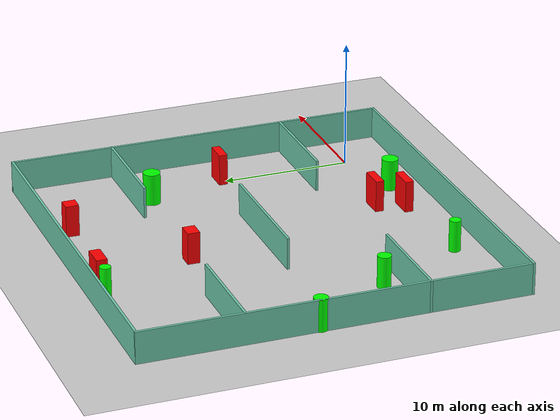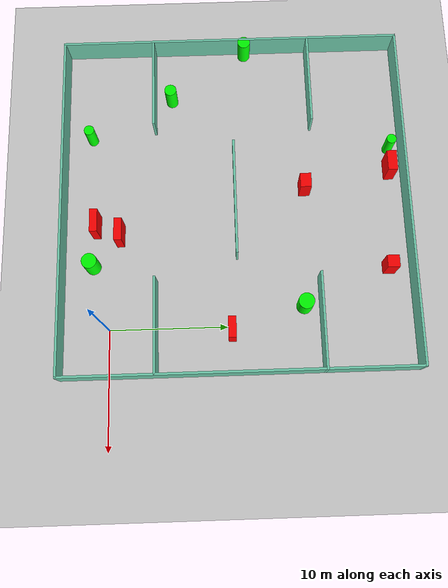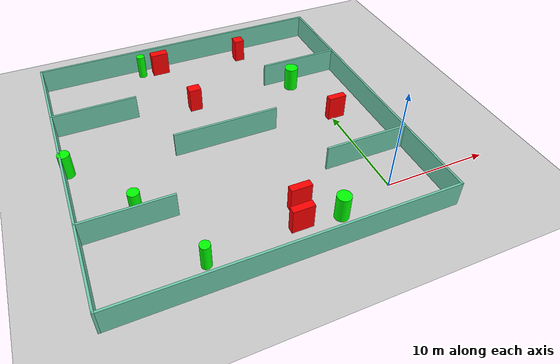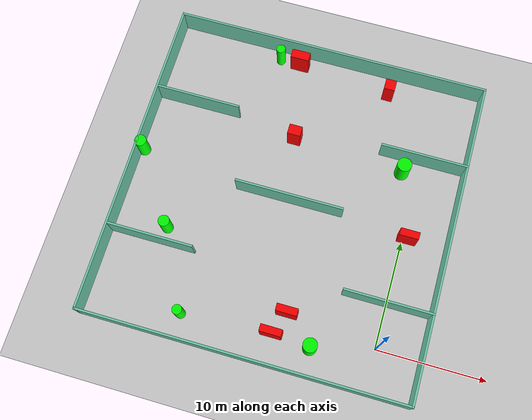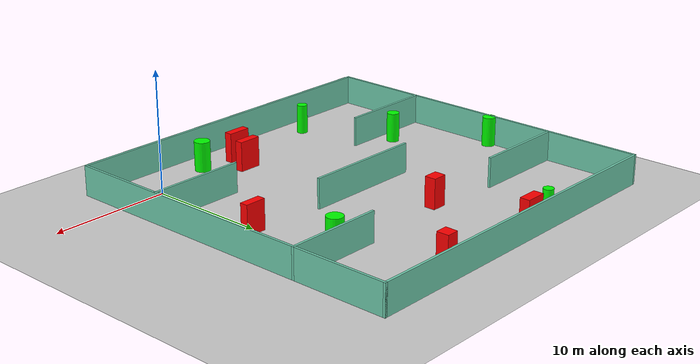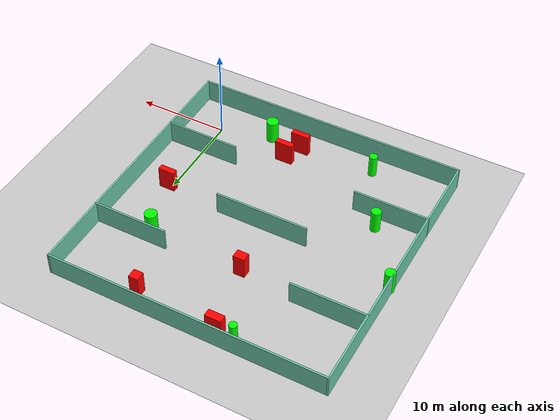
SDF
<sdf version="1.7">
 <world name="default">
  <light name="sun" type="directional">
   <pose>0 0 10 0 -0 0</pose>
   <diffuse>0.8 0.8 0.8 1</diffuse>
   <specular>0.2 0.2 0.2 1</specular>
   <attenuation>
    <range>1000</range>
    <constant>0.9</constant>
    <linear>0.01</linear>
    <quadratic>0.001</quadratic>
   </attenuation>
   <direction>-0.5 0.1 -0.9</direction>
   <spot><inner_angle>0</inner_angle><outer_angle>0</outer_angle><falloff>0</falloff></spot>
  </light>
  <model name="ground_plane">
   <static>1</static>
   <link name="link">
    <collision name="collision">
     <geometry><plane><normal>0 0 1</normal><size>100 100</size></plane></geometry>
     <surface>
      <contact><collide_bitmask>65535</collide_bitmask></contact>
      <friction><ode><mu>100</mu><mu2>50</mu2></ode></friction>
     </surface>
    </collision>
    <visual name="visual">
     <cast_shadows>0</cast_shadows>
     <geometry><plane><normal>0 0 1</normal><size>100 100</size></plane></geometry>
     <material>
      <script><uri>file://media/materials/scripts/gazebo.material</uri><name>Gazebo/Grey</name></script>
     </material>
    </visual>
   </link>
  </model>
  <gravity>0 0 -9.8</gravity>
  <magnetic_field>6e-06 2.3e-05 -4.2e-05</magnetic_field>
  <atmosphere type="adiabatic"/>
  <physics type="ode">
   <max_step_size>0.001</max_step_size>
   <real_time_factor>1</real_time_factor>
   <real_time_update_rate>1000</real_time_update_rate>
  </physics>
  <scene><ambient>0.4 0.4 0.4 1</ambient><background>0.7 0.7 0.7 1</background><shadows>1</shadows></scene>
  <spherical_coordinates>
   <surface_model>EARTH_WGS84</surface_model>
   <latitude_deg>0</latitude_deg>
   <longitude_deg>0</longitude_deg>
   <elevation>0</elevation>
   <heading_deg>0</heading_deg>
  </spherical_coordinates>
  <model name="my_base_walls">
   <link name="Wall_10">
    <collision name="Wall_10_Collision">
     <geometry><box><size>8.2 0.2 2.5</size></box></geometry>
     <pose>0 0 1.25 0 -0 0</pose>
    </collision>
    <visual name="Wall_10_Visual">
     <pose>0 0 1.25 0 -0 0</pose>
     <geometry><box><size>8.2 0.2 2.5</size></box></geometry>
     <material>
      <script><uri>file://media/materials/scripts/gazebo.material</uri><name>Gazebo/Grey</name></script>
      <ambient>0.435294 0.796078 0.67451 1</ambient>
     </material>
     <meta><layer>0</layer></meta>
    </visual>
    <pose>-11 -7 0 0 -0 0</pose>
   </link>
   <link name="Wall_12">
    <collision name="Wall_12_Collision">
     <geometry><box><size>8.2 0.2 2.5</size></box></geometry>
     <pose>0 0 1.25 0 -0 0</pose>
    </collision>
    <visual name="Wall_12_Visual">
     <pose>0 0 1.25 0 -0 0</pose>
     <geometry><box><size>8.2 0.2 2.5</size></box></geometry>
     <material>
      <script><uri>file://media/materials/scripts/gazebo.material</uri><name>Gazebo/Grey</name></script>
      <ambient>0.435294 0.796078 0.67451 1</ambient>
     </material>
     <meta><layer>0</layer></meta>
    </visual>
    <pose>-11 7 0 0 -0 0</pose>
   </link>
   <link name="Wall_14">
    <collision name="Wall_14_Collision">
     <geometry><box><size>8.2 0.2 2.5</size></box></geometry>
     <pose>0 0 1.25 0 -0 0</pose>
    </collision>
    <visual name="Wall_14_Visual">
     <pose>0 0 1.25 0 -0 0</pose>
     <geometry><box><size>8.2 0.2 2.5</size></box></geometry>
     <material>
      <script><uri>file://media/materials/scripts/gazebo.material</uri><name>Gazebo/Grey</name></script>
      <ambient>0.435294 0.796078 0.67451 1</ambient>
     </material>
     <meta><layer>0</layer></meta>
    </visual>
    <pose>11 7 0 0 -0 3.14159</pose>
   </link>
   <link name="Wall_16">
    <collision name="Wall_16_Collision">
     <geometry><box><size>10.2 0.2 2.5</size></box></geometry>
     <pose>0 0 1.25 0 -0 0</pose>
    </collision>
    <visual name="Wall_16_Visual">
     <pose>0 0 1.25 0 -0 0</pose>
     <geometry><box><size>10.2 0.2 2.5</size></box></geometry>
     <material>
      <script><uri>file://media/materials/scripts/gazebo.material</uri><name>Gazebo/Grey</name></script>
      <ambient>0.435294 0.796078 0.67451 1</ambient>
     </material>
     <meta><layer>0</layer></meta>
    </visual>
    <pose>0 0 0 0 -0 3.14159</pose>
   </link>
   <link name="Wall_2">
    <collision name="Wall_2_Collision">
     <geometry><box><size>30.2 0.2 2.5</size></box></geometry>
     <pose>0 0 1.25 0 -0 0</pose>
    </collision>
    <visual name="Wall_2_Visual">
     <pose>0 0 1.25 0 -0 0</pose>
     <geometry><box><size>30.2 0.2 2.5</size></box></geometry>
     <material>
      <script><uri>file://media/materials/scripts/gazebo.material</uri><name>Gazebo/Grey</name></script>
      <ambient>0.435294 0.796078 0.67451 1</ambient>
     </material>
     <meta><layer>0</layer></meta>
    </visual>
    <pose>0 -15 0 0 -0 3.14159</pose>
   </link>
   <link name="Wall_3">
    <collision name="Wall_3_Collision">
     <geometry><box><size>30.2 0.2 2.5</size></box></geometry>
     <pose>0 0 1.25 0 -0 0</pose>
    </collision>
    <visual name="Wall_3_Visual">
     <pose>0 0 1.25 0 -0 0</pose>
     <geometry><box><size>30.2 0.2 2.5</size></box></geometry>
     <material>
      <script><uri>file://media/materials/scripts/gazebo.material</uri><name>Gazebo/Grey</name></script>
      <ambient>0.435294 0.796078 0.67451 1</ambient>
     </material>
     <meta><layer>0</layer></meta>
    </visual>
    <pose>-15 0 0 0 -0 1.5708</pose>
   </link>
   <link name="Wall_4">
    <collision name="Wall_4_Collision">
     <geometry><box><size>30.2 0.2 2.5</size></box></geometry>
     <pose>0 0 1.25 0 -0 0</pose>
    </collision>
    <visual name="Wall_4_Visual">
     <pose>0 0 1.25 0 -0 0</pose>
     <geometry><box><size>30.2 0.2 2.5</size></box></geometry>
     <material>
      <script><uri>file://media/materials/scripts/gazebo.material</uri><name>Gazebo/Grey</name></script>
      <ambient>0.435294 0.796078 0.67451 1</ambient>
     </material>
     <meta><layer>0</layer></meta>
    </visual>
    <pose>0 15 0 0 -0 0</pose>
   </link>
   <link name="Wall_6">
    <collision name="Wall_6_Collision">
     <geometry><box><size>30.2 0.2 2.5</size></box></geometry>
     <pose>0 0 1.25 0 -0 0</pose>
    </collision>
    <visual name="Wall_6_Visual">
     <pose>0 0 1.25 0 -0 0</pose>
     <geometry><box><size>30.2 0.2 2.5</size></box></geometry>
     <material>
      <script><uri>file://media/materials/scripts/gazebo.material</uri><name>Gazebo/Grey</name></script>
      <ambient>0.435294 0.796078 0.67451 1</ambient>
     </material>
     <meta><layer>0</layer></meta>
    </visual>
    <pose>15 0 0 0 -0 1.5708</pose>
   </link>
   <link name="Wall_8">
    <collision name="Wall_8_Collision">
     <geometry><box><size>8.2 0.2 2.5</size></box></geometry>
     <pose>0 0 1.25 0 -0 0</pose>
    </collision>
    <visual name="Wall_8_Visual">
     <pose>0 0 1.25 0 -0 0</pose>
     <geometry><box><size>8.2 0.2 2.5</size></box></geometry>
     <material>
      <script><uri>file://media/materials/scripts/gazebo.material</uri><name>Gazebo/Grey</name></script>
      <ambient>0.435294 0.796078 0.67451 1</ambient>
     </material>
     <meta><layer>0</layer></meta>
    </visual>
    <pose>11 -7 0 0 -0 3.14159</pose>
   </link>
   <static>1</static>
   <pose>-11 11 0 0 -0 0</pose>
  </model>
  <model name="cylinder1">
   <static>1</static>
   <link name="link">
    <inertial>
     <mass>1</mass>
     <inertia><ixx>0.5</ixx><ixy>0</ixy><ixz>0</ixz><iyy>0.5</iyy><iyz>0</iyz><izz>1</izz></inertia>
    </inertial>
    <collision name="collision">
     <geometry><cylinder><radius>0.5237496271651569</radius><length>2.5</length></cylinder></geometry>
    </collision>
    <visual name="visual">
     <geometry><cylinder><radius>0.5237496271651569</radius><length>2.5</length></cylinder></geometry>
     <material>
      <ambient>0 1 0 1</ambient>
      <diffuse>0 1 0 1</diffuse>
      <specular>0.1 0.1 0.1 1</specular>
      <emissive>0 0 0 0</emissive>
     </material>
    </visual>
   </link>
   <pose>-21.086114595822732 5.521653149376862 1.25 0 0 0</pose>
  </model>
  <model name="cylinder2">
   <static>1</static>
   <link name="link">
    <inertial>
     <mass>1</mass>
     <inertia><ixx>0.5</ixx><ixy>0</ixy><ixz>0</ixz><iyy>0.5</iyy><iyz>0</iyz><izz>1</izz></inertia>
    </inertial>
    <collision name="collision">
     <geometry><cylinder><radius>0.672293376907809</radius><length>2.5</length></cylinder></geometry>
    </collision>
    <visual name="visual">
     <geometry><cylinder><radius>0.672293376907809</radius><length>2.5</length></cylinder></geometry>
     <material>
      <ambient>0 1 0 1</ambient>
      <diffuse>0 1 0 1</diffuse>
      <specular>0.1 0.1 0.1 1</specular>
      <emissive>0 0 0 0</emissive>
     </material>
    </visual>
   </link>
   <pose>-1.586617880085008 16.617464557920677 1.25 0 0 0</pose>
  </model>
  <model name="cylinder3">
   <static>1</static>
   <link name="link">
    <inertial>
     <mass>1</mass>
     <inertia><ixx>0.5</ixx><ixy>0</ixy><ixz>0</ixz><iyy>0.5</iyy><iyz>0</iyz><izz>1</izz></inertia>
    </inertial>
    <collision name="collision">
     <geometry><cylinder><radius>0.6511121407646759</radius><length>2.5</length></cylinder></geometry>
    </collision>
    <visual name="visual">
     <geometry><cylinder><radius>0.6511121407646759</radius><length>2.5</length></cylinder></geometry>
     <material>
      <ambient>0 1 0 1</ambient>
      <diffuse>0 1 0 1</diffuse>
      <specular>0.1 0.1 0.1 1</specular>
      <emissive>0 0 0 0</emissive>
     </material>
    </visual>
   </link>
   <pose>-5.570044838887263 -1.4558802734305925 1.25 0 0 0</pose>
  </model>
  <model name="cylinder4">
   <static>1</static>
   <link name="link">
    <inertial>
     <mass>1</mass>
     <inertia><ixx>0.5</ixx><ixy>0</ixy><ixz>0</ixz><iyy>0.5</iyy><iyz>0</iyz><izz>1</izz></inertia>
    </inertial>
    <collision name="collision">
     <geometry><cylinder><radius>0.44577251870507356</radius><length>2.5</length></cylinder></geometry>
    </collision>
    <visual name="visual">
     <geometry><cylinder><radius>0.44577251870507356</radius><length>2.5</length></cylinder></geometry>
     <material>
      <ambient>0 1 0 1</ambient>
      <diffuse>0 1 0 1</diffuse>
      <specular>0.1 0.1 0.1 1</specular>
      <emissive>0 0 0 0</emissive>
     </material>
    </visual>
   </link>
   <pose>-17.429204347237835 -1.6776570021364896 1.25 0 0 0</pose>
  </model>
  <model name="cylinder5">
   <static>1</static>
   <link name="link">
    <inertial>
     <mass>1</mass>
     <inertia><ixx>0.5</ixx><ixy>0</ixy><ixz>0</ixz><iyy>0.5</iyy><iyz>0</iyz><izz>1</izz></inertia>
    </inertial>
    <collision name="collision">
     <geometry><cylinder><radius>0.42407015372495804</radius><length>2.5</length></cylinder></geometry>
    </collision>
    <visual name="visual">
     <geometry><cylinder><radius>0.42407015372495804</radius><length>2.5</length></cylinder></geometry>
     <material>
      <ambient>0 1 0 1</ambient>
      <diffuse>0 1 0 1</diffuse>
      <specular>0.1 0.1 0.1 1</specular>
      <emissive>0 0 0 0</emissive>
     </material>
    </visual>
   </link>
   <pose>-15.772870179384743 24.891030976924537 1.25 0 0 0</pose>
  </model>
  <model name="cylinder6">
   <static>1</static>
   <link name="link">
    <inertial>
     <mass>1</mass>
     <inertia><ixx>0.5</ixx><ixy>0</ixy><ixz>0</ixz><iyy>0.5</iyy><iyz>0</iyz><izz>1</izz></inertia>
    </inertial>
    <collision name="collision">
     <geometry><cylinder><radius>0.5550004130847255</radius><length>2.5</length></cylinder></geometry>
    </collision>
    <visual name="visual">
     <geometry><cylinder><radius>0.5550004130847255</radius><length>2.5</length></cylinder></geometry>
     <material>
      <ambient>0 1 0 1</ambient>
      <diffuse>0 1 0 1</diffuse>
      <specular>0.1 0.1 0.1 1</specular>
      <emissive>0 0 0 0</emissive>
     </material>
    </visual>
   </link>
   <pose>-25.66473679899292 12.246375453685717 1.25 0 0 0</pose>
  </model>
  <model name="box1">
   <static>1</static>
   <link name="link">
    <inertial>
     <mass>1</mass>
     <inertia><ixx>0.083</ixx><ixy>0</ixy><ixz>0</ixz><iyy>0.083</iyy><iyz>0</iyz><izz>0.083</izz></inertia>
    </inertial>
    <collision name="collision">
     <geometry><box><size>1.0327984008168518 1.036954442629 2.5</size></box></geometry>
    </collision>
    <visual name="visual">
     <geometry><box><size>1.0327984008168518 1.036954442629 2.5</size></box></geometry>
     <material>
      <ambient>1 0 0 1</ambient>
      <diffuse>1 0 0 1</diffuse>
      <specular>0.1 0.1 0.1 1</specular>
      <emissive>0 0 0 0</emissive>
     </material>
    </visual>
    <sensor name="my_contact" type="contact">
     <contact><collision>box_collision</collision><topic>__default_topic__</topic></contact>
    </sensor>
   </link>
   <pose>-4.734275840942814 24.086666498582836 1.25 0 0 0</pose>
  </model>
  <model name="box2">
   <static>1</static>
   <link name="link">
    <inertial>
     <mass>1</mass>
     <inertia><ixx>0.083</ixx><ixy>0</ixy><ixz>0</ixz><iyy>0.083</iyy><iyz>0</iyz><izz>0.083</izz></inertia>
    </inertial>
    <collision name="collision">
     <geometry><box><size>1.7720959905962879 0.6634577771324407 2.5</size></box></geometry>
    </collision>
    <visual name="visual">
     <geometry><box><size>1.7720959905962879 0.6634577771324407 2.5</size></box></geometry>
     <material>
      <ambient>1 0 0 1</ambient>
      <diffuse>1 0 0 1</diffuse>
      <specular>0.1 0.1 0.1 1</specular>
      <emissive>0 0 0 0</emissive>
     </material>
    </visual>
    <sensor name="my_contact" type="contact">
     <contact><collision>box_collision</collision><topic>__default_topic__</topic></contact>
    </sensor>
   </link>
   <pose>0.3606202563047738 10.401025240638162 1.25 0 0 0</pose>
  </model>
  <model name="box3">
   <static>1</static>
   <link name="link">
    <inertial>
     <mass>1</mass>
     <inertia><ixx>0.083</ixx><ixy>0</ixy><ixz>0</ixz><iyy>0.083</iyy><iyz>0</iyz><izz>0.083</izz></inertia>
    </inertial>
    <collision name="collision">
     <geometry><box><size>1.9850898157389214 0.6542271918165463 2.5</size></box></geometry>
    </collision>
    <visual name="visual">
     <geometry><box><size>1.9850898157389214 0.6542271918165463 2.5</size></box></geometry>
     <material>
      <ambient>1 0 0 1</ambient>
      <diffuse>1 0 0 1</diffuse>
      <specular>0.1 0.1 0.1 1</specular>
      <emissive>0 0 0 0</emissive>
     </material>
    </visual>
    <sensor name="my_contact" type="contact">
     <contact><collision>box_collision</collision><topic>__default_topic__</topic></contact>
    </sensor>
   </link>
   <pose>-9.148578507495273 -1.1656515277695592 1.25 0 0 0</pose>
  </model>
  <model name="box4">
   <static>1</static>
   <link name="link">
    <inertial>
     <mass>1</mass>
     <inertia><ixx>0.083</ixx><ixy>0</ixy><ixz>0</ixz><iyy>0.083</iyy><iyz>0</iyz><izz>0.083</izz></inertia>
    </inertial>
    <collision name="collision">
     <geometry><box><size>1.2282618566578294 0.9592224840591402 2.5</size></box></geometry>
    </collision>
    <visual name="visual">
     <geometry><box><size>1.2282618566578294 0.9592224840591402 2.5</size></box></geometry>
     <material>
      <ambient>1 0 0 1</ambient>
      <diffuse>1 0 0 1</diffuse>
      <specular>0.1 0.1 0.1 1</specular>
      <emissive>0 0 0 0</emissive>
     </material>
    </visual>
    <sensor name="my_contact" type="contact">
     <contact><collision>box_collision</collision><topic>__default_topic__</topic></contact>
    </sensor>
   </link>
   <pose>-12.183223447579012 17.144361090165596 1.25 0 0 0</pose>
  </model>
  <model name="box5">
   <static>1</static>
   <link name="link">
    <inertial>
     <mass>1</mass>
     <inertia><ixx>0.083</ixx><ixy>0</ixy><ixz>0</ixz><iyy>0.083</iyy><iyz>0</iyz><izz>0.083</izz></inertia>
    </inertial>
    <collision name="collision">
     <geometry><box><size>1.7671926188325795 0.8435254878286588 2.5</size></box></geometry>
    </collision>
    <visual name="visual">
     <geometry><box><size>1.7671926188325795 0.8435254878286588 2.5</size></box></geometry>
     <material>
      <ambient>1 0 0 1</ambient>
      <diffuse>1 0 0 1</diffuse>
      <specular>0.1 0.1 0.1 1</specular>
      <emissive>0 0 0 0</emissive>
     </material>
    </visual>
    <sensor name="my_contact" type="contact">
     <contact><collision>box_collision</collision><topic>__default_topic__</topic></contact>
    </sensor>
   </link>
   <pose>-13.777522193239257 24.783915261337025 1.25 0 0 0</pose>
  </model>
  <model name="box6">
   <static>1</static>
   <link name="link">
    <inertial>
     <mass>1</mass>
     <inertia><ixx>0.083</ixx><ixy>0</ixy><ixz>0</ixz><iyy>0.083</iyy><iyz>0</iyz><izz>0.083</izz></inertia>
    </inertial>
    <collision name="collision">
     <geometry><box><size>1.940697405494161 0.6572072920653951 2.5</size></box></geometry>
    </collision>
    <visual name="visual">
     <geometry><box><size>1.940697405494161 0.6572072920653951 2.5</size></box></geometry>
     <material>
      <ambient>1 0 0 1</ambient>
      <diffuse>1 0 0 1</diffuse>
      <specular>0.1 0.1 0.1 1</specular>
      <emissive>0 0 0 0</emissive>
     </material>
    </visual>
    <sensor name="my_contact" type="contact">
     <contact><collision>box_collision</collision><topic>__default_topic__</topic></contact>
    </sensor>
   </link>
   <pose>-8.307890868421813 0.9133781668044909 1.25 0 0 0</pose>
  </model>
 </world>
</sdf>
